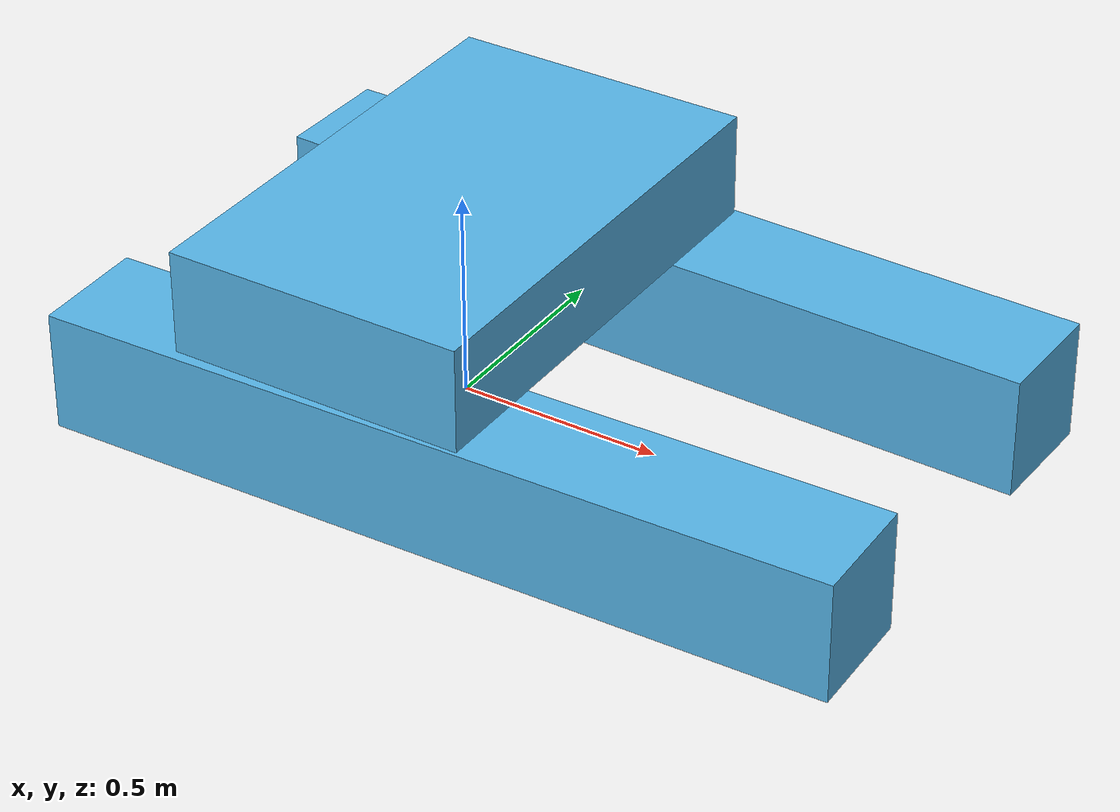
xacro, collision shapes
<?xml version="1.0"?>
<robot xmlns:xacro="http://ros.org/wiki/xacro" name="aidboat">
	<xacro:macro name="collisions" params="prefix reflect">
		<collision name="${prefix}_hull">
			<origin xyz="0.273998 ${reflect*(0.447)} 0.146" rpy="0 0 ${reflect*(-0.0244346)}"/>
			<geometry>
				<box size="1.94 0.286 0.292"/>
			</geometry>
		</collision>
	</xacro:macro>

	<link name="base_link">
	</link>

	<joint name="dummy_joint" type="fixed">
		<origin rpy="0 0 0" xyz="0 0 0"/>
		<parent link="base_link"/>
		<child link="dummy_link" />
	</joint>

	<link name="dummy_link">
		<inertial>
			<mass value="32.712"/>
			<origin xyz="0 0.26377 0.02064" rpy="0 0 0"/>
			<inertia ixx="4.4927206" ixy="0" ixz="0" iyy="11.783203" iyz="0" izz="14.626694"/>
		</inertial>

		<collision name="top_base">
			<origin xyz="0 0 0.418" rpy="0 0 0"/>
			<geometry>
				<box size="0.73 1.15767 0.251"/>
			</geometry>
		</collision>

		<xacro:collisions prefix="right" reflect="1"/>
		<xacro:collisions prefix="left" reflect="-1"/>

		<visual>
			<origin rpy="0 0 0" xyz="0 0 0.292"/>
			<geometry>
				<mesh filename="package://aidboat_description/meshes/base/AIDBOAT_Base.dae"/>
			</geometry>
		</visual>
	</link>

</robot>
